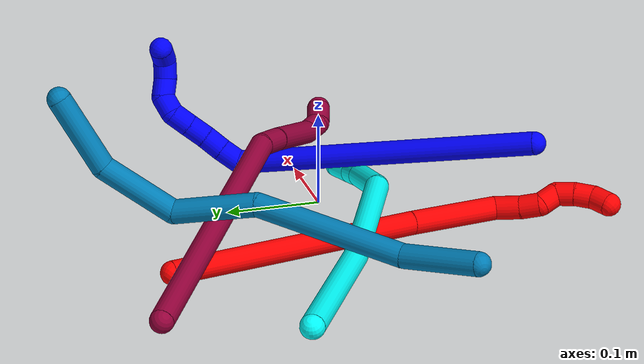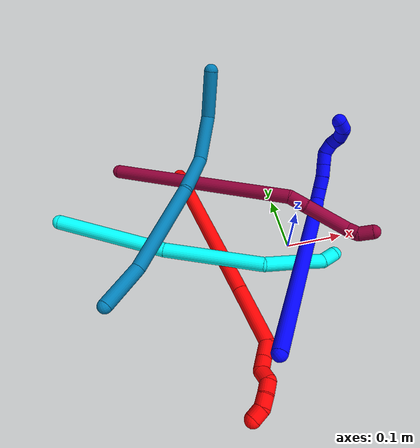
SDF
<sdf version="1.7">
 <world name="default">
  <model name="1">
   <static>0</static>
   <link name="1">
    <collision name="collision-cylinder-e_1_1_4">
     <pose>0.001714 0.098719 -0.117489 -2.44279 0.011168 -0.030651</pose>
     <geometry><cylinder><radius>0.0125</radius><length>0.306934</length></cylinder></geometry>
     <surface>
      <friction><ode><mu>1.16</mu><mu2>1.16</mu2><slip1>0</slip1><slip2>0</slip2></ode></friction>
      <contact><ode><kp>1e+06</kp><kd>1</kd><max_vel>0</max_vel><min_depth>0.001</min_depth></ode></contact>
     </surface>
    </collision>
    <visual name="visual-cylinder-e_1_1_4">
     <pose>0.001714 0.098719 -0.117489 -2.44279 0.011168 -0.030651</pose>
     <geometry><cylinder><radius>0.0125</radius><length>0.306934</length></cylinder></geometry>
     <material><ambient>0 0 1 1</ambient></material>
    </visual>
    <collision name="collision-cylinder-e_2_4_5">
     <pose>0.004576 0.20492 -0.243187 -2.40247 0.102972 -0.264515</pose>
     <geometry><cylinder><radius>0.0125</radius><length>0.02233</length></cylinder></geometry>
     <surface>
      <friction><ode><mu>1.16</mu><mu2>1.16</mu2><slip1>0</slip1><slip2>0</slip2></ode></friction>
      <contact><ode><kp>1e+06</kp><kd>1</kd><max_vel>0</max_vel><min_depth>0.001</min_depth></ode></contact>
     </surface>
    </collision>
    <visual name="visual-cylinder-e_2_4_5">
     <pose>0.004576 0.20492 -0.243187 -2.40247 0.102972 -0.264515</pose>
     <geometry><cylinder><radius>0.0125</radius><length>0.02233</length></cylinder></geometry>
     <material><ambient>0 0 1 1</ambient></material>
    </visual>
    <collision name="collision-cylinder-e_3_5_6">
     <pose>0.012551 0.214915 -0.260045 -2.85877 0.648582 -2.34041</pose>
     <geometry><cylinder><radius>0.0125</radius><length>0.022607</length></cylinder></geometry>
     <surface>
      <friction><ode><mu>1.16</mu><mu2>1.16</mu2><slip1>0</slip1><slip2>0</slip2></ode></friction>
      <contact><ode><kp>1e+06</kp><kd>1</kd><max_vel>0</max_vel><min_depth>0.001</min_depth></ode></contact>
     </surface>
    </collision>
    <visual name="visual-cylinder-e_3_5_6">
     <pose>0.012551 0.214915 -0.260045 -2.85877 0.648582 -2.34041</pose>
     <geometry><cylinder><radius>0.0125</radius><length>0.022607</length></cylinder></geometry>
     <material><ambient>0 0 1 1</ambient></material>
    </visual>
    <collision name="collision-cylinder-e_4_6_7">
     <pose>0.026628 0.219336 -0.277107 -2.9187 0.698923 -2.54569</pose>
     <geometry><cylinder><radius>0.0125</radius><length>0.022534</length></cylinder></geometry>
     <surface>
      <friction><ode><mu>1.16</mu><mu2>1.16</mu2><slip1>0</slip1><slip2>0</slip2></ode></friction>
      <contact><ode><kp>1e+06</kp><kd>1</kd><max_vel>0</max_vel><min_depth>0.001</min_depth></ode></contact>
     </surface>
    </collision>
    <visual name="visual-cylinder-e_4_6_7">
     <pose>0.026628 0.219336 -0.277107 -2.9187 0.698923 -2.54569</pose>
     <geometry><cylinder><radius>0.0125</radius><length>0.022534</length></cylinder></geometry>
     <material><ambient>0 0 1 1</ambient></material>
    </visual>
    <collision name="collision-cylinder-e_5_7_8">
     <pose>0.041844 0.224049 -0.292866 -2.77662 0.791823 -2.31007</pose>
     <geometry><cylinder><radius>0.0125</radius><length>0.022388</length></cylinder></geometry>
     <surface>
      <friction><ode><mu>1.16</mu><mu2>1.16</mu2><slip1>0</slip1><slip2>0</slip2></ode></friction>
      <contact><ode><kp>1e+06</kp><kd>1</kd><max_vel>0</max_vel><min_depth>0.001</min_depth></ode></contact>
     </surface>
    </collision>
    <visual name="visual-cylinder-e_5_7_8">
     <pose>0.041844 0.224049 -0.292866 -2.77662 0.791823 -2.31007</pose>
     <geometry><cylinder><radius>0.0125</radius><length>0.022388</length></cylinder></geometry>
     <material><ambient>0 0 1 1</ambient></material>
    </visual>
    <collision name="collision-cylinder-e_6_8_9">
     <pose>0.057536 0.229434 -0.307402 -2.7974 0.791119 -2.35271</pose>
     <geometry><cylinder><radius>0.0125</radius><length>0.021727</length></cylinder></geometry>
     <surface>
      <friction><ode><mu>1.16</mu><mu2>1.16</mu2><slip1>0</slip1><slip2>0</slip2></ode></friction>
      <contact><ode><kp>1e+06</kp><kd>1</kd><max_vel>0</max_vel><min_depth>0.001</min_depth></ode></contact>
     </surface>
    </collision>
    <visual name="visual-cylinder-e_6_8_9">
     <pose>0.057536 0.229434 -0.307402 -2.7974 0.791119 -2.35271</pose>
     <geometry><cylinder><radius>0.0125</radius><length>0.021727</length></cylinder></geometry>
     <material><ambient>0 0 1 1</ambient></material>
    </visual>
    <collision name="collision-cylinder-e_7_9_10">
     <pose>0.070588 0.229561 -0.323027 2.85889 0.545209 2.19993</pose>
     <geometry><cylinder><radius>0.0125</radius><length>0.020545</length></cylinder></geometry>
     <surface>
      <friction><ode><mu>1.16</mu><mu2>1.16</mu2><slip1>0</slip1><slip2>0</slip2></ode></friction>
      <contact><ode><kp>1e+06</kp><kd>1</kd><max_vel>0</max_vel><min_depth>0.001</min_depth></ode></contact>
     </surface>
    </collision>
    <visual name="visual-cylinder-e_7_9_10">
     <pose>0.070588 0.229561 -0.323027 2.85889 0.545209 2.19993</pose>
     <geometry><cylinder><radius>0.0125</radius><length>0.020545</length></cylinder></geometry>
     <material><ambient>0 0 1 1</ambient></material>
    </visual>
    <collision name="collision-cylinder-e_8_10_11">
     <pose>0.080709 0.219191 -0.336322 2.12129 0.476174 0.818467</pose>
     <geometry><cylinder><radius>0.0125</radius><length>0.020911</length></cylinder></geometry>
     <surface>
      <friction><ode><mu>1.16</mu><mu2>1.16</mu2><slip1>0</slip1><slip2>0</slip2></ode></friction>
      <contact><ode><kp>1e+06</kp><kd>1</kd><max_vel>0</max_vel><min_depth>0.001</min_depth></ode></contact>
     </surface>
    </collision>
    <visual name="visual-cylinder-e_8_10_11">
     <pose>0.080709 0.219191 -0.336322 2.12129 0.476174 0.818467</pose>
     <geometry><cylinder><radius>0.0125</radius><length>0.020911</length></cylinder></geometry>
     <material><ambient>0 0 1 1</ambient></material>
    </visual>
    <collision name="collision-cylinder-e_9_11_12">
     <pose>0.093041 0.205614 -0.344537 2.10589 0.853601 1.34731</pose>
     <geometry><cylinder><radius>0.0125</radius><length>0.02001</length></cylinder></geometry>
     <surface>
      <friction><ode><mu>1.16</mu><mu2>1.16</mu2><slip1>0</slip1><slip2>0</slip2></ode></friction>
      <contact><ode><kp>1e+06</kp><kd>1</kd><max_vel>0</max_vel><min_depth>0.001</min_depth></ode></contact>
     </surface>
    </collision>
    <visual name="visual-cylinder-e_9_11_12">
     <pose>0.093041 0.205614 -0.344537 2.10589 0.853601 1.34731</pose>
     <geometry><cylinder><radius>0.0125</radius><length>0.02001</length></cylinder></geometry>
     <material><ambient>0 0 1 1</ambient></material>
    </visual>
    <collision name="collision-cylinder-e_10_12_2">
     <pose>0.110455 0.199297 -0.346409 0.419883 1.40803 0.358014</pose>
     <geometry><cylinder><radius>0.0125</radius><length>0.020012</length></cylinder></geometry>
     <surface>
      <friction><ode><mu>1.16</mu><mu2>1.16</mu2><slip1>0</slip1><slip2>0</slip2></ode></friction>
      <contact><ode><kp>1e+06</kp><kd>1</kd><max_vel>0</max_vel><min_depth>0.001</min_depth></ode></contact>
     </surface>
    </collision>
    <visual name="visual-cylinder-e_10_12_2">
     <pose>0.110455 0.199297 -0.346409 0.419883 1.40803 0.358014</pose>
     <geometry><cylinder><radius>0.0125</radius><length>0.020012</length></cylinder></geometry>
     <material><ambient>0 0 1 1</ambient></material>
    </visual>
    <collision name="collision-sphere-2">
     <pose>0.120329 0.198636 -0.344929 0 -0 0</pose>
     <geometry><sphere><radius>0.0125</radius></sphere></geometry>
     <surface>
      <friction><ode><mu>1.16</mu><mu2>1.16</mu2><slip1>0</slip1><slip2>0</slip2></ode></friction>
      <contact><ode><kp>1e+06</kp><kd>1</kd><max_vel>0</max_vel><min_depth>0.001</min_depth></ode></contact>
     </surface>
    </collision>
    <visual name="visual-sphere-2">
     <pose>0.120329 0.198636 -0.344929 0 -0 0</pose>
     <geometry><sphere><radius>0.0125</radius></sphere></geometry>
     <material><ambient>0 0 1 1</ambient></material>
    </visual>
    <collision name="collision-sphere-12">
     <pose>0.100582 0.199958 -0.34789 0 -0 0</pose>
     <geometry><sphere><radius>0.0125</radius></sphere></geometry>
     <surface>
      <friction><ode><mu>1.16</mu><mu2>1.16</mu2><slip1>0</slip1><slip2>0</slip2></ode></friction>
      <contact><ode><kp>1e+06</kp><kd>1</kd><max_vel>0</max_vel><min_depth>0.001</min_depth></ode></contact>
     </surface>
    </collision>
    <visual name="visual-sphere-12">
     <pose>0.100582 0.199958 -0.34789 0 -0 0</pose>
     <geometry><sphere><radius>0.0125</radius></sphere></geometry>
     <material><ambient>0 0 1 1</ambient></material>
    </visual>
    <collision name="collision-sphere-11">
     <pose>0.085501 0.211271 -0.341183 0 -0 0</pose>
     <geometry><sphere><radius>0.0125</radius></sphere></geometry>
     <surface>
      <friction><ode><mu>1.16</mu><mu2>1.16</mu2><slip1>0</slip1><slip2>0</slip2></ode></friction>
      <contact><ode><kp>1e+06</kp><kd>1</kd><max_vel>0</max_vel><min_depth>0.001</min_depth></ode></contact>
     </surface>
    </collision>
    <visual name="visual-sphere-11">
     <pose>0.085501 0.211271 -0.341183 0 -0 0</pose>
     <geometry><sphere><radius>0.0125</radius></sphere></geometry>
     <material><ambient>0 0 1 1</ambient></material>
    </visual>
    <collision name="collision-sphere-10">
     <pose>0.075916 0.22711 -0.331461 0 -0 0</pose>
     <geometry><sphere><radius>0.0125</radius></sphere></geometry>
     <surface>
      <friction><ode><mu>1.16</mu><mu2>1.16</mu2><slip1>0</slip1><slip2>0</slip2></ode></friction>
      <contact><ode><kp>1e+06</kp><kd>1</kd><max_vel>0</max_vel><min_depth>0.001</min_depth></ode></contact>
     </surface>
    </collision>
    <visual name="visual-sphere-10">
     <pose>0.075916 0.22711 -0.331461 0 -0 0</pose>
     <geometry><sphere><radius>0.0125</radius></sphere></geometry>
     <material><ambient>0 0 1 1</ambient></material>
    </visual>
    <collision name="collision-sphere-9">
     <pose>0.065261 0.232011 -0.314592 0 -0 0</pose>
     <geometry><sphere><radius>0.0125</radius></sphere></geometry>
     <surface>
      <friction><ode><mu>1.16</mu><mu2>1.16</mu2><slip1>0</slip1><slip2>0</slip2></ode></friction>
      <contact><ode><kp>1e+06</kp><kd>1</kd><max_vel>0</max_vel><min_depth>0.001</min_depth></ode></contact>
     </surface>
    </collision>
    <visual name="visual-sphere-9">
     <pose>0.065261 0.232011 -0.314592 0 -0 0</pose>
     <geometry><sphere><radius>0.0125</radius></sphere></geometry>
     <material><ambient>0 0 1 1</ambient></material>
    </visual>
    <collision name="collision-sphere-4">
     <pose>0.003428 0.197438 -0.234979 0 -0 0</pose>
     <geometry><sphere><radius>0.0125</radius></sphere></geometry>
     <surface>
      <friction><ode><mu>1.16</mu><mu2>1.16</mu2><slip1>0</slip1><slip2>0</slip2></ode></friction>
      <contact><ode><kp>1e+06</kp><kd>1</kd><max_vel>0</max_vel><min_depth>0.001</min_depth></ode></contact>
     </surface>
    </collision>
    <visual name="visual-sphere-4">
     <pose>0.003428 0.197438 -0.234979 0 -0 0</pose>
     <geometry><sphere><radius>0.0125</radius></sphere></geometry>
     <material><ambient>0 0 1 1</ambient></material>
    </visual>
    <collision name="collision-sphere-1">
     <geometry><sphere><radius>0.0125</radius></sphere></geometry>
     <surface>
      <friction><ode><mu>1.16</mu><mu2>1.16</mu2><slip1>0</slip1><slip2>0</slip2></ode></friction>
      <contact><ode><kp>1e+06</kp><kd>1</kd><max_vel>0</max_vel><min_depth>0.001</min_depth></ode></contact>
     </surface>
    </collision>
    <visual name="visual-sphere-1">
     <geometry><sphere><radius>0.0125</radius></sphere></geometry>
     <material><ambient>0 0 1 1</ambient></material>
    </visual>
    <collision name="collision-sphere-8">
     <pose>0.04981 0.226856 -0.300212 0 -0 0</pose>
     <geometry><sphere><radius>0.0125</radius></sphere></geometry>
     <surface>
      <friction><ode><mu>1.16</mu><mu2>1.16</mu2><slip1>0</slip1><slip2>0</slip2></ode></friction>
      <contact><ode><kp>1e+06</kp><kd>1</kd><max_vel>0</max_vel><min_depth>0.001</min_depth></ode></contact>
     </surface>
    </collision>
    <visual name="visual-sphere-8">
     <pose>0.04981 0.226856 -0.300212 0 -0 0</pose>
     <geometry><sphere><radius>0.0125</radius></sphere></geometry>
     <material><ambient>0 0 1 1</ambient></material>
    </visual>
    <collision name="collision-sphere-5">
     <pose>0.005723 0.212401 -0.251395 0 -0 0</pose>
     <geometry><sphere><radius>0.0125</radius></sphere></geometry>
     <surface>
      <friction><ode><mu>1.16</mu><mu2>1.16</mu2><slip1>0</slip1><slip2>0</slip2></ode></friction>
      <contact><ode><kp>1e+06</kp><kd>1</kd><max_vel>0</max_vel><min_depth>0.001</min_depth></ode></contact>
     </surface>
    </collision>
    <visual name="visual-sphere-5">
     <pose>0.005723 0.212401 -0.251395 0 -0 0</pose>
     <geometry><sphere><radius>0.0125</radius></sphere></geometry>
     <material><ambient>0 0 1 1</ambient></material>
    </visual>
    <collision name="collision-sphere-6">
     <pose>0.019379 0.217429 -0.268695 0 -0 0</pose>
     <geometry><sphere><radius>0.0125</radius></sphere></geometry>
     <surface>
      <friction><ode><mu>1.16</mu><mu2>1.16</mu2><slip1>0</slip1><slip2>0</slip2></ode></friction>
      <contact><ode><kp>1e+06</kp><kd>1</kd><max_vel>0</max_vel><min_depth>0.001</min_depth></ode></contact>
     </surface>
    </collision>
    <visual name="visual-sphere-6">
     <pose>0.019379 0.217429 -0.268695 0 -0 0</pose>
     <geometry><sphere><radius>0.0125</radius></sphere></geometry>
     <material><ambient>0 0 1 1</ambient></material>
    </visual>
    <collision name="collision-sphere-7">
     <pose>0.033878 0.221242 -0.28552 0 -0 0</pose>
     <geometry><sphere><radius>0.0125</radius></sphere></geometry>
     <surface>
      <friction><ode><mu>1.16</mu><mu2>1.16</mu2><slip1>0</slip1><slip2>0</slip2></ode></friction>
      <contact><ode><kp>1e+06</kp><kd>1</kd><max_vel>0</max_vel><min_depth>0.001</min_depth></ode></contact>
     </surface>
    </collision>
    <visual name="visual-sphere-7">
     <pose>0.033878 0.221242 -0.28552 0 -0 0</pose>
     <geometry><sphere><radius>0.0125</radius></sphere></geometry>
     <material><ambient>0 0 1 1</ambient></material>
    </visual>
    <inertial>
     <pose>0.021818 0.144162 -0.188694 0 -0 0</pose>
     <mass>0.5</mass>
     <inertia>
      <ixx>0.002353</ixx>
      <ixy>0</ixy>
      <ixz>0</ixz>
      <iyy>-0.001904</iyy>
      <iyz>0</iyz>
      <izz>-0.001621</izz>
     </inertia>
    </inertial>
   </link>
   <pose>-0.092048 -0.209417 0.080739 -1.93074 -0.990187 2.29936</pose>
  </model>
  <model name="2">
   <static>0</static>
   <link name="2">
    <collision name="collision-cylinder-e_1_1_4">
     <pose>0.014676 -0.077544 0.110071 0.613736 0.108572 0.034434</pose>
     <geometry><cylinder><radius>0.0125</radius><length>0.27088</length></cylinder></geometry>
     <surface>
      <friction><ode><mu>1.16</mu><mu2>1.16</mu2><slip1>0</slip1><slip2>0</slip2></ode></friction>
      <contact><ode><kp>1e+06</kp><kd>1</kd><max_vel>0</max_vel><min_depth>0.001</min_depth></ode></contact>
     </surface>
    </collision>
    <visual name="visual-cylinder-e_1_1_4">
     <pose>0.014676 -0.077544 0.110071 0.613736 0.108572 0.034434</pose>
     <geometry><cylinder><radius>0.0125</radius><length>0.27088</length></cylinder></geometry>
     <material><ambient>1 0 0 1</ambient></material>
    </visual>
    <collision name="collision-cylinder-e_2_4_5">
     <pose>0.035515 -0.184013 0.259519 0.633533 0.125463 0.041176</pose>
     <geometry><cylinder><radius>0.0125</radius><length>0.098493</length></cylinder></geometry>
     <surface>
      <friction><ode><mu>1.16</mu><mu2>1.16</mu2><slip1>0</slip1><slip2>0</slip2></ode></friction>
      <contact><ode><kp>1e+06</kp><kd>1</kd><max_vel>0</max_vel><min_depth>0.001</min_depth></ode></contact>
     </surface>
    </collision>
    <visual name="visual-cylinder-e_2_4_5">
     <pose>0.035515 -0.184013 0.259519 0.633533 0.125463 0.041176</pose>
     <geometry><cylinder><radius>0.0125</radius><length>0.098493</length></cylinder></geometry>
     <material><ambient>1 0 0 1</ambient></material>
    </visual>
    <collision name="collision-cylinder-e_3_5_6">
     <pose>0.035015 -0.223333 0.305974 0.973129 -0.487144 -0.261412</pose>
     <geometry><cylinder><radius>0.0125</radius><length>0.028463</length></cylinder></geometry>
     <surface>
      <friction><ode><mu>1.16</mu><mu2>1.16</mu2><slip1>0</slip1><slip2>0</slip2></ode></friction>
      <contact><ode><kp>1e+06</kp><kd>1</kd><max_vel>0</max_vel><min_depth>0.001</min_depth></ode></contact>
     </surface>
    </collision>
    <visual name="visual-cylinder-e_3_5_6">
     <pose>0.035015 -0.223333 0.305974 0.973129 -0.487144 -0.261412</pose>
     <geometry><cylinder><radius>0.0125</radius><length>0.028463</length></cylinder></geometry>
     <material><ambient>1 0 0 1</ambient></material>
    </visual>
    <collision name="collision-cylinder-e_4_6_7">
     <pose>0.022578 -0.240584 0.319042 0.852449 -0.565281 -0.262218</pose>
     <geometry><cylinder><radius>0.0125</radius><length>0.021563</length></cylinder></geometry>
     <surface>
      <friction><ode><mu>1.16</mu><mu2>1.16</mu2><slip1>0</slip1><slip2>0</slip2></ode></friction>
      <contact><ode><kp>1e+06</kp><kd>1</kd><max_vel>0</max_vel><min_depth>0.001</min_depth></ode></contact>
     </surface>
    </collision>
    <visual name="visual-cylinder-e_4_6_7">
     <pose>0.022578 -0.240584 0.319042 0.852449 -0.565281 -0.262218</pose>
     <geometry><cylinder><radius>0.0125</radius><length>0.021563</length></cylinder></geometry>
     <material><ambient>1 0 0 1</ambient></material>
    </visual>
    <collision name="collision-cylinder-e_5_7_8">
     <pose>0.01592 -0.250308 0.334869 0.283909 -0.085961 -0.012293</pose>
     <geometry><cylinder><radius>0.0125</radius><length>0.020565</length></cylinder></geometry>
     <surface>
      <friction><ode><mu>1.16</mu><mu2>1.16</mu2><slip1>0</slip1><slip2>0</slip2></ode></friction>
      <contact><ode><kp>1e+06</kp><kd>1</kd><max_vel>0</max_vel><min_depth>0.001</min_depth></ode></contact>
     </surface>
    </collision>
    <visual name="visual-cylinder-e_5_7_8">
     <pose>0.01592 -0.250308 0.334869 0.283909 -0.085961 -0.012293</pose>
     <geometry><cylinder><radius>0.0125</radius><length>0.020565</length></cylinder></geometry>
     <material><ambient>1 0 0 1</ambient></material>
    </visual>
    <collision name="collision-cylinder-e_6_8_9">
     <pose>0.010561 -0.260717 0.349544 0.999997 -0.463332 -0.256333</pose>
     <geometry><cylinder><radius>0.0125</radius><length>0.020031</length></cylinder></geometry>
     <surface>
      <friction><ode><mu>1.16</mu><mu2>1.16</mu2><slip1>0</slip1><slip2>0</slip2></ode></friction>
      <contact><ode><kp>1e+06</kp><kd>1</kd><max_vel>0</max_vel><min_depth>0.001</min_depth></ode></contact>
     </surface>
    </collision>
    <visual name="visual-cylinder-e_6_8_9">
     <pose>0.010561 -0.260717 0.349544 0.999997 -0.463332 -0.256333</pose>
     <geometry><cylinder><radius>0.0125</radius><length>0.020031</length></cylinder></geometry>
     <material><ambient>1 0 0 1</ambient></material>
    </visual>
    <collision name="collision-cylinder-e_7_9_10">
     <pose>0.002273 -0.276765 0.358003 1.16879 -0.391078 -0.26055</pose>
     <geometry><cylinder><radius>0.0125</radius><length>0.020002</length></cylinder></geometry>
     <surface>
      <friction><ode><mu>1.16</mu><mu2>1.16</mu2><slip1>0</slip1><slip2>0</slip2></ode></friction>
      <contact><ode><kp>1e+06</kp><kd>1</kd><max_vel>0</max_vel><min_depth>0.001</min_depth></ode></contact>
     </surface>
    </collision>
    <visual name="visual-cylinder-e_7_9_10">
     <pose>0.002273 -0.276765 0.358003 1.16879 -0.391078 -0.26055</pose>
     <geometry><cylinder><radius>0.0125</radius><length>0.020002</length></cylinder></geometry>
     <material><ambient>1 0 0 1</ambient></material>
    </visual>
    <collision name="collision-cylinder-e_8_10_2">
     <pose>-0.007347 -0.293409 0.361287 1.61172 -0.619603 -0.64377</pose>
     <geometry><cylinder><radius>0.0125</radius><length>0.020002</length></cylinder></geometry>
     <surface>
      <friction><ode><mu>1.16</mu><mu2>1.16</mu2><slip1>0</slip1><slip2>0</slip2></ode></friction>
      <contact><ode><kp>1e+06</kp><kd>1</kd><max_vel>0</max_vel><min_depth>0.001</min_depth></ode></contact>
     </surface>
    </collision>
    <visual name="visual-cylinder-e_8_10_2">
     <pose>-0.007347 -0.293409 0.361287 1.61172 -0.619603 -0.64377</pose>
     <geometry><cylinder><radius>0.0125</radius><length>0.020002</length></cylinder></geometry>
     <material><ambient>1 0 0 1</ambient></material>
    </visual>
    <collision name="collision-sphere-2">
     <pose>-0.013155 -0.301544 0.360954 0 -0 0</pose>
     <geometry><sphere><radius>0.0125</radius></sphere></geometry>
     <surface>
      <friction><ode><mu>1.16</mu><mu2>1.16</mu2><slip1>0</slip1><slip2>0</slip2></ode></friction>
      <contact><ode><kp>1e+06</kp><kd>1</kd><max_vel>0</max_vel><min_depth>0.001</min_depth></ode></contact>
     </surface>
    </collision>
    <visual name="visual-sphere-2">
     <pose>-0.013155 -0.301544 0.360954 0 -0 0</pose>
     <geometry><sphere><radius>0.0125</radius></sphere></geometry>
     <material><ambient>1 0 0 1</ambient></material>
    </visual>
    <collision name="collision-sphere-10">
     <pose>-0.00154 -0.285274 0.36162 0 -0 0</pose>
     <geometry><sphere><radius>0.0125</radius></sphere></geometry>
     <surface>
      <friction><ode><mu>1.16</mu><mu2>1.16</mu2><slip1>0</slip1><slip2>0</slip2></ode></friction>
      <contact><ode><kp>1e+06</kp><kd>1</kd><max_vel>0</max_vel><min_depth>0.001</min_depth></ode></contact>
     </surface>
    </collision>
    <visual name="visual-sphere-10">
     <pose>-0.00154 -0.285274 0.36162 0 -0 0</pose>
     <geometry><sphere><radius>0.0125</radius></sphere></geometry>
     <material><ambient>1 0 0 1</ambient></material>
    </visual>
    <collision name="collision-sphere-9">
     <pose>0.006085 -0.268256 0.354385 0 -0 0</pose>
     <geometry><sphere><radius>0.0125</radius></sphere></geometry>
     <surface>
      <friction><ode><mu>1.16</mu><mu2>1.16</mu2><slip1>0</slip1><slip2>0</slip2></ode></friction>
      <contact><ode><kp>1e+06</kp><kd>1</kd><max_vel>0</max_vel><min_depth>0.001</min_depth></ode></contact>
     </surface>
    </collision>
    <visual name="visual-sphere-9">
     <pose>0.006085 -0.268256 0.354385 0 -0 0</pose>
     <geometry><sphere><radius>0.0125</radius></sphere></geometry>
     <material><ambient>1 0 0 1</ambient></material>
    </visual>
    <collision name="collision-sphere-4">
     <pose>0.029352 -0.155088 0.220141 0 -0 0</pose>
     <geometry><sphere><radius>0.0125</radius></sphere></geometry>
     <surface>
      <friction><ode><mu>1.16</mu><mu2>1.16</mu2><slip1>0</slip1><slip2>0</slip2></ode></friction>
      <contact><ode><kp>1e+06</kp><kd>1</kd><max_vel>0</max_vel><min_depth>0.001</min_depth></ode></contact>
     </surface>
    </collision>
    <visual name="visual-sphere-4">
     <pose>0.029352 -0.155088 0.220141 0 -0 0</pose>
     <geometry><sphere><radius>0.0125</radius></sphere></geometry>
     <material><ambient>1 0 0 1</ambient></material>
    </visual>
    <collision name="collision-sphere-1">
     <geometry><sphere><radius>0.0125</radius></sphere></geometry>
     <surface>
      <friction><ode><mu>1.16</mu><mu2>1.16</mu2><slip1>0</slip1><slip2>0</slip2></ode></friction>
      <contact><ode><kp>1e+06</kp><kd>1</kd><max_vel>0</max_vel><min_depth>0.001</min_depth></ode></contact>
     </surface>
    </collision>
    <visual name="visual-sphere-1">
     <geometry><sphere><radius>0.0125</radius></sphere></geometry>
     <material><ambient>1 0 0 1</ambient></material>
    </visual>
    <collision name="collision-sphere-8">
     <pose>0.015037 -0.253178 0.344703 0 -0 0</pose>
     <geometry><sphere><radius>0.0125</radius></sphere></geometry>
     <surface>
      <friction><ode><mu>1.16</mu><mu2>1.16</mu2><slip1>0</slip1><slip2>0</slip2></ode></friction>
      <contact><ode><kp>1e+06</kp><kd>1</kd><max_vel>0</max_vel><min_depth>0.001</min_depth></ode></contact>
     </surface>
    </collision>
    <visual name="visual-sphere-8">
     <pose>0.015037 -0.253178 0.344703 0 -0 0</pose>
     <geometry><sphere><radius>0.0125</radius></sphere></geometry>
     <material><ambient>1 0 0 1</ambient></material>
    </visual>
    <collision name="collision-sphere-5">
     <pose>0.041677 -0.212937 0.298897 0 -0 0</pose>
     <geometry><sphere><radius>0.0125</radius></sphere></geometry>
     <surface>
      <friction><ode><mu>1.16</mu><mu2>1.16</mu2><slip1>0</slip1><slip2>0</slip2></ode></friction>
      <contact><ode><kp>1e+06</kp><kd>1</kd><max_vel>0</max_vel><min_depth>0.001</min_depth></ode></contact>
     </surface>
    </collision>
    <visual name="visual-sphere-5">
     <pose>0.041677 -0.212937 0.298897 0 -0 0</pose>
     <geometry><sphere><radius>0.0125</radius></sphere></geometry>
     <material><ambient>1 0 0 1</ambient></material>
    </visual>
    <collision name="collision-sphere-6">
     <pose>0.028353 -0.23373 0.313051 0 -0 0</pose>
     <geometry><sphere><radius>0.0125</radius></sphere></geometry>
     <surface>
      <friction><ode><mu>1.16</mu><mu2>1.16</mu2><slip1>0</slip1><slip2>0</slip2></ode></friction>
      <contact><ode><kp>1e+06</kp><kd>1</kd><max_vel>0</max_vel><min_depth>0.001</min_depth></ode></contact>
     </surface>
    </collision>
    <visual name="visual-sphere-6">
     <pose>0.028353 -0.23373 0.313051 0 -0 0</pose>
     <geometry><sphere><radius>0.0125</radius></sphere></geometry>
     <material><ambient>1 0 0 1</ambient></material>
    </visual>
    <collision name="collision-sphere-7">
     <pose>0.016803 -0.247439 0.325034 0 -0 0</pose>
     <geometry><sphere><radius>0.0125</radius></sphere></geometry>
     <surface>
      <friction><ode><mu>1.16</mu><mu2>1.16</mu2><slip1>0</slip1><slip2>0</slip2></ode></friction>
      <contact><ode><kp>1e+06</kp><kd>1</kd><max_vel>0</max_vel><min_depth>0.001</min_depth></ode></contact>
     </surface>
    </collision>
    <visual name="visual-sphere-7">
     <pose>0.016803 -0.247439 0.325034 0 -0 0</pose>
     <geometry><sphere><radius>0.0125</radius></sphere></geometry>
     <material><ambient>1 0 0 1</ambient></material>
    </visual>
    <inertial>
     <pose>0.018789 -0.144897 0.198482 0 -0 0</pose>
     <mass>0.5</mass>
     <inertia>
      <ixx>0.001805</ixx>
      <ixy>0</ixy>
      <ixz>0</ixz>
      <iyy>0.001474</iyy>
      <iyz>0</iyz>
      <izz>0.000852</izz>
     </inertia>
    </inertial>
   </link>
   <pose>-0.160072 0.195594 0.011497 0.859408 0.682215 0.042586</pose>
  </model>
  <model name="3">
   <static>0</static>
   <link name="3">
    <collision name="collision-cylinder-e_1_1_4">
     <pose>0.062931 -0.042581 -0.058183 2.50981 0.717602 1.70792</pose>
     <geometry><cylinder><radius>0.0125</radius><length>0.191403</length></cylinder></geometry>
     <surface>
      <friction><ode><mu>1.16</mu><mu2>1.16</mu2><slip1>0</slip1><slip2>0</slip2></ode></friction>
      <contact><ode><kp>1e+06</kp><kd>1</kd><max_vel>0</max_vel><min_depth>0.001</min_depth></ode></contact>
     </surface>
    </collision>
    <visual name="visual-cylinder-e_1_1_4">
     <pose>0.062931 -0.042581 -0.058183 2.50981 0.717602 1.70792</pose>
     <geometry><cylinder><radius>0.0125</radius><length>0.191403</length></cylinder></geometry>
     <material><ambient>0.003922 1 0.996078 1</ambient></material>
    </visual>
    <collision name="collision-cylinder-e_2_4_5">
     <pose>0.189306 -0.11956 -0.162366 2.49952 0.835036 1.85505</pose>
     <geometry><cylinder><radius>0.0125</radius><length>0.171163</length></cylinder></geometry>
     <surface>
      <friction><ode><mu>1.16</mu><mu2>1.16</mu2><slip1>0</slip1><slip2>0</slip2></ode></friction>
      <contact><ode><kp>1e+06</kp><kd>1</kd><max_vel>0</max_vel><min_depth>0.001</min_depth></ode></contact>
     </surface>
    </collision>
    <visual name="visual-cylinder-e_2_4_5">
     <pose>0.189306 -0.11956 -0.162366 2.49952 0.835036 1.85505</pose>
     <geometry><cylinder><radius>0.0125</radius><length>0.171163</length></cylinder></geometry>
     <material><ambient>0.003922 1 0.996078 1</ambient></material>
    </visual>
    <collision name="collision-cylinder-e_3_5_6">
     <pose>0.279513 -0.153011 -0.233069 -3.10332 0.825035 -3.05419</pose>
     <geometry><cylinder><radius>0.0125</radius><length>0.072867</length></cylinder></geometry>
     <surface>
      <friction><ode><mu>1.16</mu><mu2>1.16</mu2><slip1>0</slip1><slip2>0</slip2></ode></friction>
      <contact><ode><kp>1e+06</kp><kd>1</kd><max_vel>0</max_vel><min_depth>0.001</min_depth></ode></contact>
     </surface>
    </collision>
    <visual name="visual-cylinder-e_3_5_6">
     <pose>0.279513 -0.153011 -0.233069 -3.10332 0.825035 -3.05419</pose>
     <geometry><cylinder><radius>0.0125</radius><length>0.072867</length></cylinder></geometry>
     <material><ambient>0.003922 1 0.996078 1</ambient></material>
    </visual>
    <collision name="collision-cylinder-e_4_6_7">
     <pose>0.31945 -0.151327 -0.271327 -3.08716 0.770381 -3.00751</pose>
     <geometry><cylinder><radius>0.0125</radius><length>0.037834</length></cylinder></geometry>
     <surface>
      <friction><ode><mu>1.16</mu><mu2>1.16</mu2><slip1>0</slip1><slip2>0</slip2></ode></friction>
      <contact><ode><kp>1e+06</kp><kd>1</kd><max_vel>0</max_vel><min_depth>0.001</min_depth></ode></contact>
     </surface>
    </collision>
    <visual name="visual-cylinder-e_4_6_7">
     <pose>0.31945 -0.151327 -0.271327 -3.08716 0.770381 -3.00751</pose>
     <geometry><cylinder><radius>0.0125</radius><length>0.037834</length></cylinder></geometry>
     <material><ambient>0.003922 1 0.996078 1</ambient></material>
    </visual>
    <collision name="collision-cylinder-e_5_7_2">
     <pose>0.344021 -0.146096 -0.29023 -2.44283 1.02107 -1.98812</pose>
     <geometry><cylinder><radius>0.0125</radius><length>0.026733</length></cylinder></geometry>
     <surface>
      <friction><ode><mu>1.16</mu><mu2>1.16</mu2><slip1>0</slip1><slip2>0</slip2></ode></friction>
      <contact><ode><kp>1e+06</kp><kd>1</kd><max_vel>0</max_vel><min_depth>0.001</min_depth></ode></contact>
     </surface>
    </collision>
    <visual name="visual-cylinder-e_5_7_2">
     <pose>0.344021 -0.146096 -0.29023 -2.44283 1.02107 -1.98812</pose>
     <geometry><cylinder><radius>0.0125</radius><length>0.026733</length></cylinder></geometry>
     <material><ambient>0.003922 1 0.996078 1</ambient></material>
    </visual>
    <collision name="collision-sphere-2">
     <pose>0.355418 -0.141604 -0.295576 0 -0 0</pose>
     <geometry><sphere><radius>0.0125</radius></sphere></geometry>
     <surface>
      <friction><ode><mu>1.16</mu><mu2>1.16</mu2><slip1>0</slip1><slip2>0</slip2></ode></friction>
      <contact><ode><kp>1e+06</kp><kd>1</kd><max_vel>0</max_vel><min_depth>0.001</min_depth></ode></contact>
     </surface>
    </collision>
    <visual name="visual-sphere-2">
     <pose>0.355418 -0.141604 -0.295576 0 -0 0</pose>
     <geometry><sphere><radius>0.0125</radius></sphere></geometry>
     <material><ambient>0.003922 1 0.996078 1</ambient></material>
    </visual>
    <collision name="collision-sphere-7">
     <pose>0.332624 -0.150588 -0.284883 0 -0 0</pose>
     <geometry><sphere><radius>0.0125</radius></sphere></geometry>
     <surface>
      <friction><ode><mu>1.16</mu><mu2>1.16</mu2><slip1>0</slip1><slip2>0</slip2></ode></friction>
      <contact><ode><kp>1e+06</kp><kd>1</kd><max_vel>0</max_vel><min_depth>0.001</min_depth></ode></contact>
     </surface>
    </collision>
    <visual name="visual-sphere-7">
     <pose>0.332624 -0.150588 -0.284883 0 -0 0</pose>
     <geometry><sphere><radius>0.0125</radius></sphere></geometry>
     <material><ambient>0.003922 1 0.996078 1</ambient></material>
    </visual>
    <collision name="collision-sphere-6">
     <pose>0.306276 -0.152065 -0.257772 0 -0 0</pose>
     <geometry><sphere><radius>0.0125</radius></sphere></geometry>
     <surface>
      <friction><ode><mu>1.16</mu><mu2>1.16</mu2><slip1>0</slip1><slip2>0</slip2></ode></friction>
      <contact><ode><kp>1e+06</kp><kd>1</kd><max_vel>0</max_vel><min_depth>0.001</min_depth></ode></contact>
     </surface>
    </collision>
    <visual name="visual-sphere-6">
     <pose>0.306276 -0.152065 -0.257772 0 -0 0</pose>
     <geometry><sphere><radius>0.0125</radius></sphere></geometry>
     <material><ambient>0.003922 1 0.996078 1</ambient></material>
    </visual>
    <collision name="collision-sphere-5">
     <pose>0.25275 -0.153957 -0.208365 0 -0 0</pose>
     <geometry><sphere><radius>0.0125</radius></sphere></geometry>
     <surface>
      <friction><ode><mu>1.16</mu><mu2>1.16</mu2><slip1>0</slip1><slip2>0</slip2></ode></friction>
      <contact><ode><kp>1e+06</kp><kd>1</kd><max_vel>0</max_vel><min_depth>0.001</min_depth></ode></contact>
     </surface>
    </collision>
    <visual name="visual-sphere-5">
     <pose>0.25275 -0.153957 -0.208365 0 -0 0</pose>
     <geometry><sphere><radius>0.0125</radius></sphere></geometry>
     <material><ambient>0.003922 1 0.996078 1</ambient></material>
    </visual>
    <collision name="collision-sphere-1">
     <geometry><sphere><radius>0.0125</radius></sphere></geometry>
     <surface>
      <friction><ode><mu>1.16</mu><mu2>1.16</mu2><slip1>0</slip1><slip2>0</slip2></ode></friction>
      <contact><ode><kp>1e+06</kp><kd>1</kd><max_vel>0</max_vel><min_depth>0.001</min_depth></ode></contact>
     </surface>
    </collision>
    <visual name="visual-sphere-1">
     <geometry><sphere><radius>0.0125</radius></sphere></geometry>
     <material><ambient>0.003922 1 0.996078 1</ambient></material>
    </visual>
    <collision name="collision-sphere-4">
     <pose>0.125863 -0.085163 -0.116366 0 -0 0</pose>
     <geometry><sphere><radius>0.0125</radius></sphere></geometry>
     <surface>
      <friction><ode><mu>1.16</mu><mu2>1.16</mu2><slip1>0</slip1><slip2>0</slip2></ode></friction>
      <contact><ode><kp>1e+06</kp><kd>1</kd><max_vel>0</max_vel><min_depth>0.001</min_depth></ode></contact>
     </surface>
    </collision>
    <visual name="visual-sphere-4">
     <pose>0.125863 -0.085163 -0.116366 0 -0 0</pose>
     <geometry><sphere><radius>0.0125</radius></sphere></geometry>
     <material><ambient>0.003922 1 0.996078 1</ambient></material>
    </visual>
    <inertial>
     <pose>0.172195 -0.098789 -0.147869 0 -0 0</pose>
     <mass>0.5</mass>
     <inertia>
      <ixx>0.00057</ixx>
      <ixy>0</ixy>
      <ixz>0</ixz>
      <iyy>0.001313</iyy>
      <iyz>0</iyz>
      <izz>-0.000327</izz>
     </inertia>
    </inertial>
   </link>
   <pose>-0.387607 0.112734 0.045542 -0.342443 -0.495641 0.180668</pose>
  </model>
  <model name="8">
   <static>0</static>
   <link name="8">
    <collision name="collision-cylinder-e_1_1_4">
     <pose>0.128679 -0.093588 0.059006 1.00826 0.860648 0.496026</pose>
     <geometry><cylinder><radius>0.0125</radius><length>0.339403</length></cylinder></geometry>
     <surface>
      <friction><ode><mu>1.16</mu><mu2>1.16</mu2><slip1>0</slip1><slip2>0</slip2></ode></friction>
      <contact><ode><kp>1e+06</kp><kd>1</kd><max_vel>0</max_vel><min_depth>0.001</min_depth></ode></contact>
     </surface>
    </collision>
    <visual name="visual-cylinder-e_1_1_4">
     <pose>0.128679 -0.093588 0.059006 1.00826 0.860648 0.496026</pose>
     <geometry><cylinder><radius>0.0125</radius><length>0.339403</length></cylinder></geometry>
     <material><ambient>0.584314 0 0.227451 1</ambient></material>
    </visual>
    <collision name="collision-cylinder-e_2_4_5">
     <pose>0.271666 -0.190465 0.125249 0.426669 1.06372 0.253572</pose>
     <geometry><cylinder><radius>0.0125</radius><length>0.032737</length></cylinder></geometry>
     <surface>
      <friction><ode><mu>1.16</mu><mu2>1.16</mu2><slip1>0</slip1><slip2>0</slip2></ode></friction>
      <contact><ode><kp>1e+06</kp><kd>1</kd><max_vel>0</max_vel><min_depth>0.001</min_depth></ode></contact>
     </surface>
    </collision>
    <visual name="visual-cylinder-e_2_4_5">
     <pose>0.271666 -0.190465 0.125249 0.426669 1.06372 0.253572</pose>
     <geometry><cylinder><radius>0.0125</radius><length>0.032737</length></cylinder></geometry>
     <material><ambient>0.584314 0 0.227451 1</ambient></material>
    </visual>
    <collision name="collision-cylinder-e_3_5_6">
     <pose>0.319645 -0.20093 0.154477 0.3154 0.968815 0.166972</pose>
     <geometry><cylinder><radius>0.0125</radius><length>0.081701</length></cylinder></geometry>
     <surface>
      <friction><ode><mu>1.16</mu><mu2>1.16</mu2><slip1>0</slip1><slip2>0</slip2></ode></friction>
      <contact><ode><kp>1e+06</kp><kd>1</kd><max_vel>0</max_vel><min_depth>0.001</min_depth></ode></contact>
     </surface>
    </collision>
    <visual name="visual-cylinder-e_3_5_6">
     <pose>0.319645 -0.20093 0.154477 0.3154 0.968815 0.166972</pose>
     <geometry><cylinder><radius>0.0125</radius><length>0.081701</length></cylinder></geometry>
     <material><ambient>0.584314 0 0.227451 1</ambient></material>
    </visual>
    <collision name="collision-cylinder-e_4_6_7">
     <pose>0.362934 -0.211819 0.177846 1.2155 1.18024 0.871916</pose>
     <geometry><cylinder><radius>0.0125</radius><length>0.020805</length></cylinder></geometry>
     <surface>
      <friction><ode><mu>1.16</mu><mu2>1.16</mu2><slip1>0</slip1><slip2>0</slip2></ode></friction>
      <contact><ode><kp>1e+06</kp><kd>1</kd><max_vel>0</max_vel><min_depth>0.001</min_depth></ode></contact>
     </surface>
    </collision>
    <visual name="visual-cylinder-e_4_6_7">
     <pose>0.362934 -0.211819 0.177846 1.2155 1.18024 0.871916</pose>
     <geometry><cylinder><radius>0.0125</radius><length>0.020805</length></cylinder></geometry>
     <material><ambient>0.584314 0 0.227451 1</ambient></material>
    </visual>
    <collision name="collision-cylinder-e_5_7_2">
     <pose>0.379517 -0.225387 0.183107 1.1954 0.581563 0.401956</pose>
     <geometry><cylinder><radius>0.0125</radius><length>0.025354</length></cylinder></geometry>
     <surface>
      <friction><ode><mu>1.16</mu><mu2>1.16</mu2><slip1>0</slip1><slip2>0</slip2></ode></friction>
      <contact><ode><kp>1e+06</kp><kd>1</kd><max_vel>0</max_vel><min_depth>0.001</min_depth></ode></contact>
     </surface>
    </collision>
    <visual name="visual-cylinder-e_5_7_2">
     <pose>0.379517 -0.225387 0.183107 1.1954 0.581563 0.401956</pose>
     <geometry><cylinder><radius>0.0125</radius><length>0.025354</length></cylinder></geometry>
     <material><ambient>0.584314 0 0.227451 1</ambient></material>
    </visual>
    <collision name="collision-sphere-2">
     <pose>0.38648 -0.235242 0.186991 0 -0 0</pose>
     <geometry><sphere><radius>0.0125</radius></sphere></geometry>
     <surface>
      <friction><ode><mu>1.16</mu><mu2>1.16</mu2><slip1>0</slip1><slip2>0</slip2></ode></friction>
      <contact><ode><kp>1e+06</kp><kd>1</kd><max_vel>0</max_vel><min_depth>0.001</min_depth></ode></contact>
     </surface>
    </collision>
    <visual name="visual-sphere-2">
     <pose>0.38648 -0.235242 0.186991 0 -0 0</pose>
     <geometry><sphere><radius>0.0125</radius></sphere></geometry>
     <material><ambient>0.584314 0 0.227451 1</ambient></material>
    </visual>
    <collision name="collision-sphere-7">
     <pose>0.372553 -0.215532 0.179223 0 -0 0</pose>
     <geometry><sphere><radius>0.0125</radius></sphere></geometry>
     <surface>
      <friction><ode><mu>1.16</mu><mu2>1.16</mu2><slip1>0</slip1><slip2>0</slip2></ode></friction>
      <contact><ode><kp>1e+06</kp><kd>1</kd><max_vel>0</max_vel><min_depth>0.001</min_depth></ode></contact>
     </surface>
    </collision>
    <visual name="visual-sphere-7">
     <pose>0.372553 -0.215532 0.179223 0 -0 0</pose>
     <geometry><sphere><radius>0.0125</radius></sphere></geometry>
     <material><ambient>0.584314 0 0.227451 1</ambient></material>
    </visual>
    <collision name="collision-sphere-6">
     <pose>0.353314 -0.208106 0.176468 0 -0 0</pose>
     <geometry><sphere><radius>0.0125</radius></sphere></geometry>
     <surface>
      <friction><ode><mu>1.16</mu><mu2>1.16</mu2><slip1>0</slip1><slip2>0</slip2></ode></friction>
      <contact><ode><kp>1e+06</kp><kd>1</kd><max_vel>0</max_vel><min_depth>0.001</min_depth></ode></contact>
     </surface>
    </collision>
    <visual name="visual-sphere-6">
     <pose>0.353314 -0.208106 0.176468 0 -0 0</pose>
     <geometry><sphere><radius>0.0125</radius></sphere></geometry>
     <material><ambient>0.584314 0 0.227451 1</ambient></material>
    </visual>
    <collision name="collision-sphere-5">
     <pose>0.285975 -0.193755 0.132485 0 -0 0</pose>
     <geometry><sphere><radius>0.0125</radius></sphere></geometry>
     <surface>
      <friction><ode><mu>1.16</mu><mu2>1.16</mu2><slip1>0</slip1><slip2>0</slip2></ode></friction>
      <contact><ode><kp>1e+06</kp><kd>1</kd><max_vel>0</max_vel><min_depth>0.001</min_depth></ode></contact>
     </surface>
    </collision>
    <visual name="visual-sphere-5">
     <pose>0.285975 -0.193755 0.132485 0 -0 0</pose>
     <geometry><sphere><radius>0.0125</radius></sphere></geometry>
     <material><ambient>0.584314 0 0.227451 1</ambient></material>
    </visual>
    <collision name="collision-sphere-1">
     <geometry><sphere><radius>0.0125</radius></sphere></geometry>
     <surface>
      <friction><ode><mu>1.16</mu><mu2>1.16</mu2><slip1>0</slip1><slip2>0</slip2></ode></friction>
      <contact><ode><kp>1e+06</kp><kd>1</kd><max_vel>0</max_vel><min_depth>0.001</min_depth></ode></contact>
     </surface>
    </collision>
    <visual name="visual-sphere-1">
     <geometry><sphere><radius>0.0125</radius></sphere></geometry>
     <material><ambient>0.584314 0 0.227451 1</ambient></material>
    </visual>
    <collision name="collision-sphere-4">
     <pose>0.257357 -0.187175 0.118012 0 -0 0</pose>
     <geometry><sphere><radius>0.0125</radius></sphere></geometry>
     <surface>
      <friction><ode><mu>1.16</mu><mu2>1.16</mu2><slip1>0</slip1><slip2>0</slip2></ode></friction>
      <contact><ode><kp>1e+06</kp><kd>1</kd><max_vel>0</max_vel><min_depth>0.001</min_depth></ode></contact>
     </surface>
    </collision>
    <visual name="visual-sphere-4">
     <pose>0.257357 -0.187175 0.118012 0 -0 0</pose>
     <geometry><sphere><radius>0.0125</radius></sphere></geometry>
     <material><ambient>0.584314 0 0.227451 1</ambient></material>
    </visual>
    <inertial>
     <pose>0.191712 -0.129074 0.090181 0 -0 0</pose>
     <mass>0.5</mass>
     <inertia>
      <ixx>0.002959</ixx>
      <ixy>0</ixy>
      <ixz>0</ixz>
      <iyy>0.003591</iyy>
      <iyz>0</iyz>
      <izz>-0.000697</izz>
     </inertia>
    </inertial>
   </link>
   <pose>-0.273864 0.231823 0.014946 -2.34524 -0.006675 -1.24112</pose>
  </model>
  <model name="9">
   <static>0</static>
   <link name="9">
    <collision name="collision-cylinder-e_1_1_4">
     <pose>-0.003984 0.027854 -0.03055 -2.40233 -0.096071 0.246892</pose>
     <geometry><cylinder><radius>0.0125</radius><length>0.083066</length></cylinder></geometry>
     <surface>
      <friction><ode><mu>1.16</mu><mu2>1.16</mu2><slip1>0</slip1><slip2>0</slip2></ode></friction>
      <contact><ode><kp>1e+06</kp><kd>1</kd><max_vel>0</max_vel><min_depth>0.001</min_depth></ode></contact>
     </surface>
    </collision>
    <visual name="visual-cylinder-e_1_1_4">
     <pose>-0.003984 0.027854 -0.03055 -2.40233 -0.096071 0.246892</pose>
     <geometry><cylinder><radius>0.0125</radius><length>0.083066</length></cylinder></geometry>
     <material><ambient>0 0.490196 0.709804 1</ambient></material>
    </visual>
    <collision name="collision-cylinder-e_2_4_5">
     <pose>0.006856 0.107628 -0.121192 -2.42902 0.184542 -0.487383</pose>
     <geometry><cylinder><radius>0.0125</radius><length>0.161575</length></cylinder></geometry>
     <surface>
      <friction><ode><mu>1.16</mu><mu2>1.16</mu2><slip1>0</slip1><slip2>0</slip2></ode></friction>
      <contact><ode><kp>1e+06</kp><kd>1</kd><max_vel>0</max_vel><min_depth>0.001</min_depth></ode></contact>
     </surface>
    </collision>
    <visual name="visual-cylinder-e_2_4_5">
     <pose>0.006856 0.107628 -0.121192 -2.42902 0.184542 -0.487383</pose>
     <geometry><cylinder><radius>0.0125</radius><length>0.161575</length></cylinder></geometry>
     <material><ambient>0 0.490196 0.709804 1</ambient></material>
    </visual>
    <collision name="collision-cylinder-e_3_5_6">
     <pose>0.018351 0.197275 -0.204401 -2.12053 -0.075111 0.133975</pose>
     <geometry><cylinder><radius>0.0125</radius><length>0.088739</length></cylinder></geometry>
     <surface>
      <friction><ode><mu>1.16</mu><mu2>1.16</mu2><slip1>0</slip1><slip2>0</slip2></ode></friction>
      <contact><ode><kp>1e+06</kp><kd>1</kd><max_vel>0</max_vel><min_depth>0.001</min_depth></ode></contact>
     </surface>
    </collision>
    <visual name="visual-cylinder-e_3_5_6">
     <pose>0.018351 0.197275 -0.204401 -2.12053 -0.075111 0.133975</pose>
     <geometry><cylinder><radius>0.0125</radius><length>0.088739</length></cylinder></geometry>
     <material><ambient>0 0.490196 0.709804 1</ambient></material>
    </visual>
    <collision name="collision-cylinder-e_4_6_7">
     <pose>0.039804 0.259371 -0.250697 -2.33117 0.635027 -1.30749</pose>
     <geometry><cylinder><radius>0.0125</radius><length>0.083557</length></cylinder></geometry>
     <surface>
      <friction><ode><mu>1.16</mu><mu2>1.16</mu2><slip1>0</slip1><slip2>0</slip2></ode></friction>
      <contact><ode><kp>1e+06</kp><kd>1</kd><max_vel>0</max_vel><min_depth>0.001</min_depth></ode></contact>
     </surface>
    </collision>
    <visual name="visual-cylinder-e_4_6_7">
     <pose>0.039804 0.259371 -0.250697 -2.33117 0.635027 -1.30749</pose>
     <geometry><cylinder><radius>0.0125</radius><length>0.083557</length></cylinder></geometry>
     <material><ambient>0 0.490196 0.709804 1</ambient></material>
    </visual>
    <collision name="collision-cylinder-e_5_7_2">
     <pose>0.101214 0.29281 -0.29123 -2.66004 1.07988 -2.36394</pose>
     <geometry><cylinder><radius>0.0125</radius><length>0.083063</length></cylinder></geometry>
     <surface>
      <friction><ode><mu>1.16</mu><mu2>1.16</mu2><slip1>0</slip1><slip2>0</slip2></ode></friction>
      <contact><ode><kp>1e+06</kp><kd>1</kd><max_vel>0</max_vel><min_depth>0.001</min_depth></ode></contact>
     </surface>
    </collision>
    <visual name="visual-cylinder-e_5_7_2">
     <pose>0.101214 0.29281 -0.29123 -2.66004 1.07988 -2.36394</pose>
     <geometry><cylinder><radius>0.0125</radius><length>0.083063</length></cylinder></geometry>
     <material><ambient>0 0.490196 0.709804 1</ambient></material>
    </visual>
    <collision name="collision-sphere-2">
     <pose>0.13784 0.301878 -0.308582 0 -0 0</pose>
     <geometry><sphere><radius>0.0125</radius></sphere></geometry>
     <surface>
      <friction><ode><mu>1.16</mu><mu2>1.16</mu2><slip1>0</slip1><slip2>0</slip2></ode></friction>
      <contact><ode><kp>1e+06</kp><kd>1</kd><max_vel>0</max_vel><min_depth>0.001</min_depth></ode></contact>
     </surface>
    </collision>
    <visual name="visual-sphere-2">
     <pose>0.13784 0.301878 -0.308582 0 -0 0</pose>
     <geometry><sphere><radius>0.0125</radius></sphere></geometry>
     <material><ambient>0 0.490196 0.709804 1</ambient></material>
    </visual>
    <collision name="collision-sphere-7">
     <pose>0.064587 0.283741 -0.273877 0 -0 0</pose>
     <geometry><sphere><radius>0.0125</radius></sphere></geometry>
     <surface>
      <friction><ode><mu>1.16</mu><mu2>1.16</mu2><slip1>0</slip1><slip2>0</slip2></ode></friction>
      <contact><ode><kp>1e+06</kp><kd>1</kd><max_vel>0</max_vel><min_depth>0.001</min_depth></ode></contact>
     </surface>
    </collision>
    <visual name="visual-sphere-7">
     <pose>0.064587 0.283741 -0.273877 0 -0 0</pose>
     <geometry><sphere><radius>0.0125</radius></sphere></geometry>
     <material><ambient>0 0.490196 0.709804 1</ambient></material>
    </visual>
    <collision name="collision-sphere-6">
     <pose>0.015022 0.235001 -0.227516 0 -0 0</pose>
     <geometry><sphere><radius>0.0125</radius></sphere></geometry>
     <surface>
      <friction><ode><mu>1.16</mu><mu2>1.16</mu2><slip1>0</slip1><slip2>0</slip2></ode></friction>
      <contact><ode><kp>1e+06</kp><kd>1</kd><max_vel>0</max_vel><min_depth>0.001</min_depth></ode></contact>
     </surface>
    </collision>
    <visual name="visual-sphere-6">
     <pose>0.015022 0.235001 -0.227516 0 -0 0</pose>
     <geometry><sphere><radius>0.0125</radius></sphere></geometry>
     <material><ambient>0 0.490196 0.709804 1</ambient></material>
    </visual>
    <collision name="collision-sphere-5">
     <pose>0.021681 0.159549 -0.181285 0 -0 0</pose>
     <geometry><sphere><radius>0.0125</radius></sphere></geometry>
     <surface>
      <friction><ode><mu>1.16</mu><mu2>1.16</mu2><slip1>0</slip1><slip2>0</slip2></ode></friction>
      <contact><ode><kp>1e+06</kp><kd>1</kd><max_vel>0</max_vel><min_depth>0.001</min_depth></ode></contact>
     </surface>
    </collision>
    <visual name="visual-sphere-5">
     <pose>0.021681 0.159549 -0.181285 0 -0 0</pose>
     <geometry><sphere><radius>0.0125</radius></sphere></geometry>
     <material><ambient>0 0.490196 0.709804 1</ambient></material>
    </visual>
    <collision name="collision-sphere-1">
     <geometry><sphere><radius>0.0125</radius></sphere></geometry>
     <surface>
      <friction><ode><mu>1.16</mu><mu2>1.16</mu2><slip1>0</slip1><slip2>0</slip2></ode></friction>
      <contact><ode><kp>1e+06</kp><kd>1</kd><max_vel>0</max_vel><min_depth>0.001</min_depth></ode></contact>
     </surface>
    </collision>
    <visual name="visual-sphere-1">
     <geometry><sphere><radius>0.0125</radius></sphere></geometry>
     <material><ambient>0 0.490196 0.709804 1</ambient></material>
    </visual>
    <collision name="collision-sphere-4">
     <pose>-0.007968 0.055707 -0.0611 0 -0 0</pose>
     <geometry><sphere><radius>0.0125</radius></sphere></geometry>
     <surface>
      <friction><ode><mu>1.16</mu><mu2>1.16</mu2><slip1>0</slip1><slip2>0</slip2></ode></friction>
      <contact><ode><kp>1e+06</kp><kd>1</kd><max_vel>0</max_vel><min_depth>0.001</min_depth></ode></contact>
     </surface>
    </collision>
    <visual name="visual-sphere-4">
     <pose>-0.007968 0.055707 -0.0611 0 -0 0</pose>
     <geometry><sphere><radius>0.0125</radius></sphere></geometry>
     <material><ambient>0 0.490196 0.709804 1</ambient></material>
    </visual>
    <inertial>
     <pose>0.028277 0.166407 -0.170791 0 -0 0</pose>
     <mass>0.5</mass>
     <inertia>
      <ixx>0.000224</ixx>
      <ixy>0</ixy>
      <ixz>0</ixz>
      <iyy>-0.000405</iyy>
      <iyz>0</iyz>
      <izz>-0.000514</izz>
     </inertia>
    </inertial>
   </link>
   <pose>-0.324929 -0.07123 0.059474 -2.25414 -1.2229 2.3407</pose>
  </model>
 </world>
</sdf>
